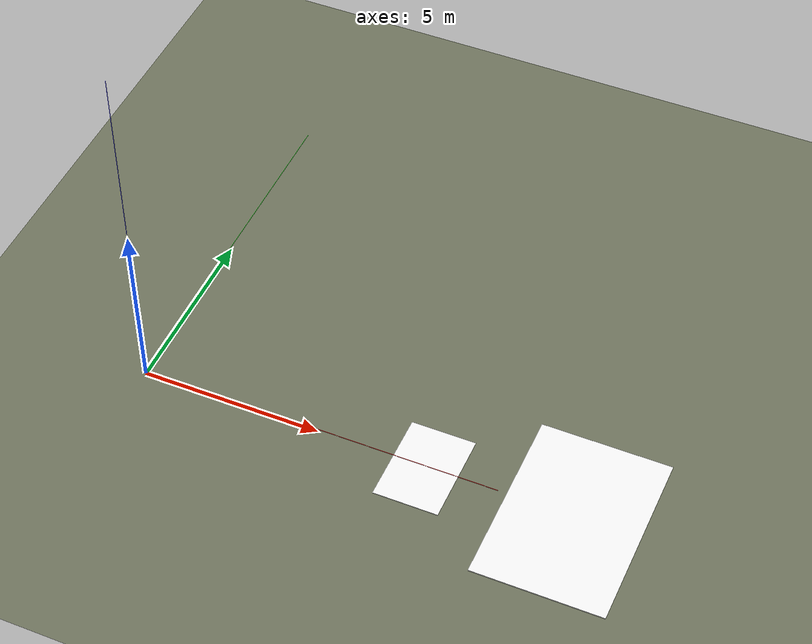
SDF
<sdf version="1.9">
 <world name="mission_world">
  <physics name="1ms" type="ignore">
   <max_step_size>0.001</max_step_size>
   <real_time_factor>1.0</real_time_factor>
  </physics>
  <plugin filename="gz-sim-physics-system" name="gz::sim::systems::Physics"/>
  <plugin filename="gz-sim-sensors-system" name="gz::sim::systems::Sensors">
   <render_engine>ogre2</render_engine>
  </plugin>
  <plugin filename="gz-sim-user-commands-system" name="gz::sim::systems::UserCommands"/>
  <plugin filename="gz-sim-scene-broadcaster-system" name="gz::sim::systems::SceneBroadcaster"/>
  <plugin filename="gz-sim-imu-system" name="gz::sim::systems::Imu"/>
  <plugin filename="gz-sim-navsat-system" name="gz::sim::systems::NavSat"/>
  <scene><ambient>1.0 1.0 1.0</ambient><background>0.8 0.8 0.8</background></scene>
  <spherical_coordinates>
   <latitude_deg>-35.363262</latitude_deg>
   <longitude_deg>149.165237</longitude_deg>
   <elevation>584</elevation>
   <heading_deg>0</heading_deg>
   <surface_model>EARTH_WGS84</surface_model>
  </spherical_coordinates>
  <light type="directional" name="sun">
   <pose>0 0 10 0 0 0</pose>
   <diffuse>0.8 0.8 0.8 1</diffuse>
   <specular>0.8 0.8 0.8 1</specular>
   <attenuation>
    <range>1000</range>
    <constant>0.9</constant>
    <linear>0.01</linear>
    <quadratic>0.001</quadratic>
   </attenuation>
   <direction>-0.5 0.1 -0.9</direction>
  </light>
  <model name="bench_ground">
   <static>true</static>
   <link name="link">
    <pose>0 0 -0.01 0 0 0</pose>
    <visual name="grass">
     <geometry><plane><normal>0 0 1</normal><size>400 400</size></plane></geometry>
     <material><ambient>0.45 0.47 0.38 1</ambient><diffuse>0.45 0.47 0.38 1</diffuse></material>
    </visual>
    <collision name="ground">
     <geometry><plane><normal>0 0 1</normal><size>400 400</size></plane></geometry>
    </collision>
   </link>
  </model>
  <model name="axes">
   <static>1</static>
   <link name="link">
    <visual name="r">
     <cast_shadows>0</cast_shadows>
     <pose>5 0 0.1 0 0 0</pose>
     <geometry><box><size>10 0.01 0.01</size></box></geometry>
     <material>
      <ambient>1 0 0 0.8</ambient>
      <diffuse>1 0 0 0.8</diffuse>
      <emissive>1 0 0 0.8</emissive>
      <specular>0.5 0.5 0.5 0.8</specular>
     </material>
    </visual>
    <visual name="g">
     <cast_shadows>0</cast_shadows>
     <pose>0 5 0.1 0 0 0</pose>
     <geometry><box><size>0.01 10 0.01</size></box></geometry>
     <material>
      <ambient>0 1 0 0.8</ambient>
      <diffuse>0 1 0 0.8</diffuse>
      <emissive>0 1 0 0.8</emissive>
      <specular>0.5 0.5 0.5 0.8</specular>
     </material>
    </visual>
    <visual name="b">
     <cast_shadows>0</cast_shadows>
     <pose>0 0 5.1 0 0 0</pose>
     <geometry><box><size>0.01 0.01 10</size></box></geometry>
     <material>
      <ambient>0 0 1 0.8</ambient>
      <diffuse>0 0 1 0.8</diffuse>
      <emissive>0 0 1 0.8</emissive>
      <specular>0.5 0.5 0.5 0.8</specular>
     </material>
    </visual>
    <sensor name="navsat_sensor" type="navsat"><always_on>1</always_on><update_rate>1</update_rate></sensor>
   </link>
  </model>
  <include><uri>model://qr_panel_a3</uri><name>qr_target_a3</name><pose>8 0 0 0 0 0</pose></include>
  <include><uri>model://qr_panel_big</uri><name>qr_target_big</name><pose>12 0 0 0 0 0</pose></include>
 </world>
</sdf>

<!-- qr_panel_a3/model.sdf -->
<sdf version="1.9">
  <model name="qr_panel_a3">
    <static>true</static>
    <link name="panel">
      <pose>0 0 0.01 0 0 0</pose>
      <visual name="face">
        <geometry>
          <box><size>1.782 2.52 0.02</size></box>
        </geometry>
        <material>
          <diffuse>1 1 1 1</diffuse>
          <specular>0.05 0.05 0.05 1</specular>
          <pbr>
            <metal>
              <albedo_map>model://qr_panel_a3/materials/textures/qr.png</albedo_map>
            </metal>
          </pbr>
        </material>
      </visual>
      <collision name="surface">
        <geometry>
          <box><size>1.782 2.52 0.02</size></box>
        </geometry>
      </collision>
    </link>
  </model>
</sdf>

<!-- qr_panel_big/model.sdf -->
<sdf version="1.9">
  <model name="qr_panel_big">
    <static>true</static>
    <link name="panel">
      <pose>0 0 0.02 0 0 0</pose>
      <visual name="face">
        <geometry>
          <box><size>3.564 5.04 0.03</size></box>
        </geometry>
        <material>
          <diffuse>1 1 1 1</diffuse>
          <specular>0.05 0.05 0.05 1</specular>
          <pbr>
            <metal>
              <albedo_map>model://qr_panel_big/materials/textures/qr.png</albedo_map>
            </metal>
          </pbr>
        </material>
      </visual>
      <collision name="surface">
        <geometry>
          <box><size>3.564 5.04 0.03</size></box>
        </geometry>
      </collision>
    </link>
  </model>
</sdf>
